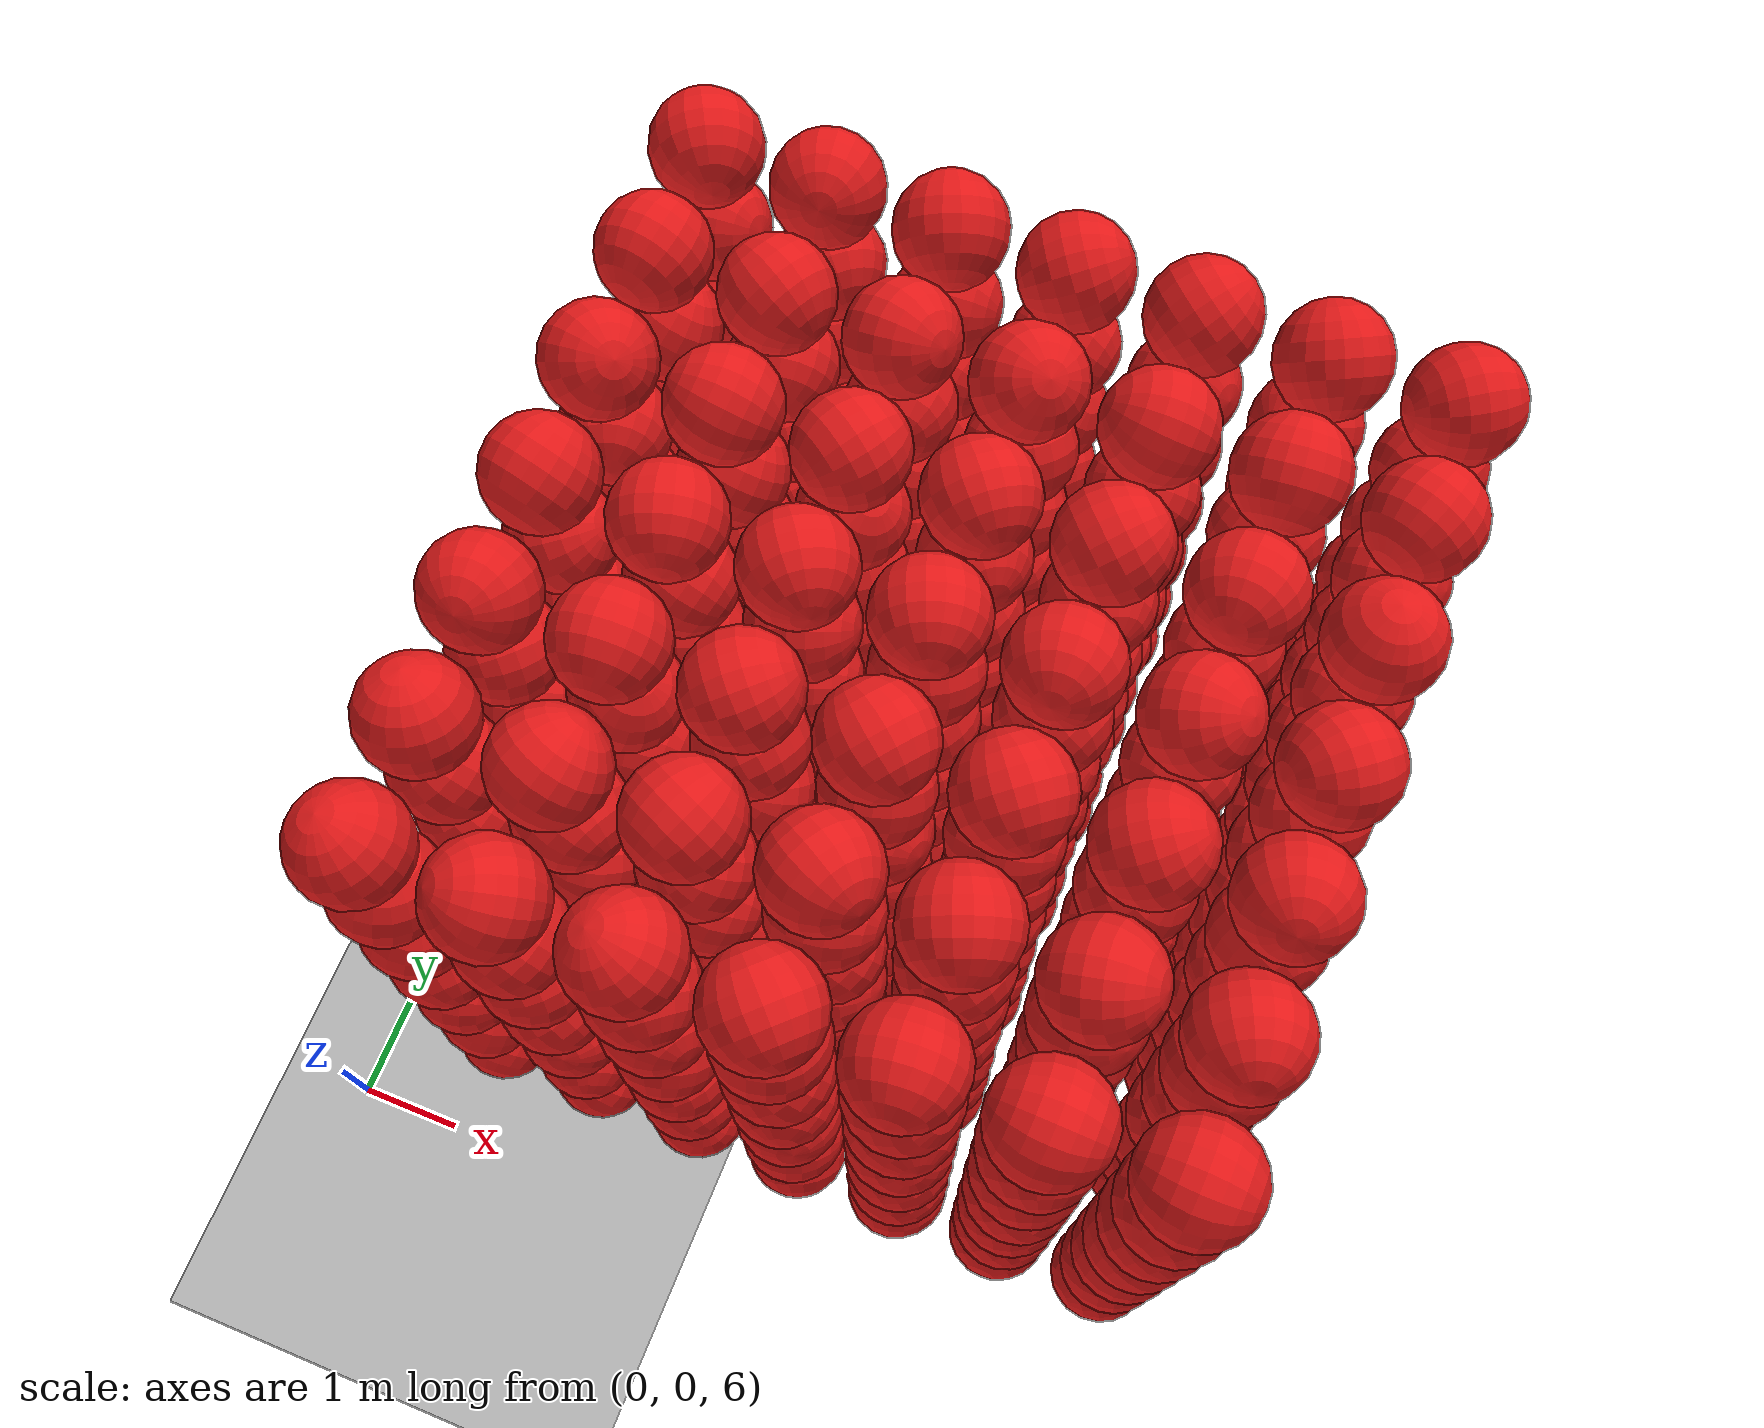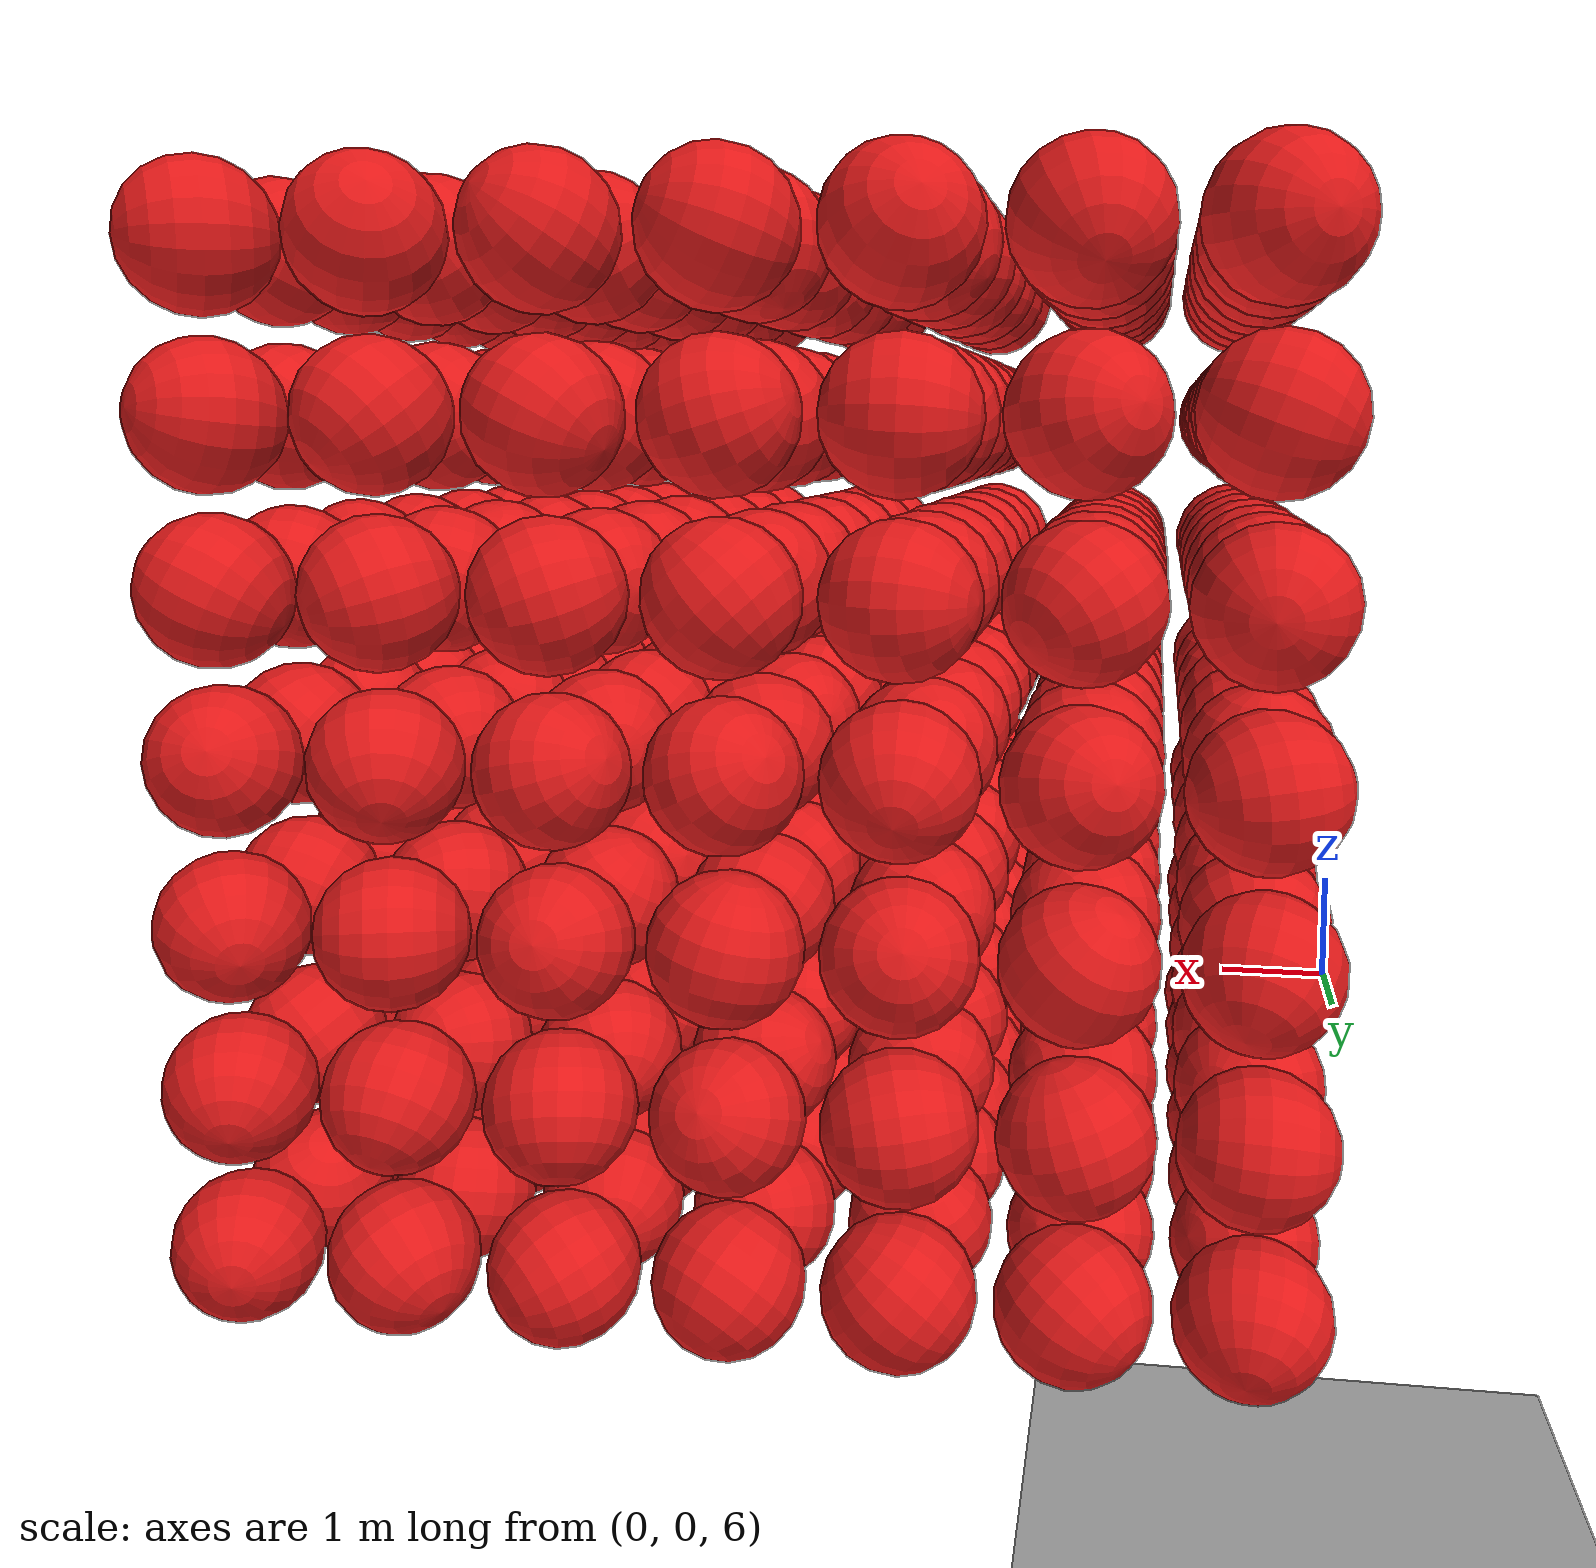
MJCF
<mujoco model="Humanoid and 100 objects">
    <compiler angle="degree"/>

    <option timestep="0.01" iterations="50" solver="PGS" jacobian="sparse" cone="elliptic" tolerance="1e-10"/>

    <size njmax="5000" nconmax="2000" nstack="1000000000"/>

    <default>
        <geom solimp=".9 .9 .01"/>

        <default class="object5">
			<geom type="sphere" material="geom" rgba=".9 .1 .1 1" size="0.500000"/>
        </default>
    </default>

    <asset>
        <texture type="skybox" builtin="gradient" width="128" height="128" rgb1=".4 .6 .8" rgb2="0 0 0"/>
        <texture name="texgeom" type="cube" builtin="flat" mark="cross" width="128" height="128"
            rgb1="0.6 0.6 0.6" rgb2="0.6 0.6 0.6" markrgb="1 1 1"/>
        <texture name="texplane" type="2d" builtin="checker" rgb1=".4 .4 .4" rgb2=".6 .6 .6"
            width="512" height="512"/>
        <material name='geom' texture="texgeom" texuniform="true"/>
        <material name='MatPlane' reflectance='0.3' texture="texplane" texrepeat="1 1" texuniform="true"/>
    </asset>

    <visual>
        <quality shadowsize="4096" offsamples="8"/>
        <map znear="0.1" force="0.05"/>
    </visual>

    <statistic extent="4"/>

    <worldbody>
        <light directional="true" diffuse=".8 .8 .8" pos="0 0 10" dir="0 0 -10"/>

        <geom pos="0 0 0" type="plane" size="3 3 .5" rgba=".7 .7 .7 1" material="MatPlane"/>
		<body pos="1.100843 1.100294 6.100027" quat="-0.660486 0.483778 0.343327 0.460265"> <freejoint/> <geom class="object5"/> </body>
		<body pos="1.100624 1.100825 7.200035" quat="-0.202914 -0.537380 -0.041008 0.817537"> <freejoint/> <geom class="object5"/> </body>
		<body pos="1.100281 1.100599 8.300026" quat="-0.524456 0.507891 -0.464079 0.501620"> <freejoint/> <geom class="object5"/> </body>
		<body pos="1.100338 1.100671 9.400052" quat="0.430952 -0.000953 0.815337 -0.386660"> <freejoint/> <geom class="object5"/> </body>
		<body pos="1.100377 1.100114 10.500965" quat="-0.142552 -0.877502 0.457672 0.014337"> <freejoint/> <geom class="object5"/> </body>
		<body pos="1.100328 1.100754 11.600836" quat="-0.575387 0.080426 -0.151472 -0.799698"> <freejoint/> <geom class="object5"/> </body>
		<body pos="1.100600 1.100937 12.700108" quat="0.744484 0.093930 -0.135211 -0.647023"> <freejoint/> <geom class="object5"/> </body>
		<body pos="1.100248 2.200447 6.100533" quat="-0.267067 0.501828 0.701310 0.430126"> <freejoint/> <geom class="object5"/> </body>
		<body pos="1.100406 2.200604 7.200641" quat="-0.875903 -0.008953 -0.445626 0.184745"> <freejoint/> <geom class="object5"/> </body>
		<body pos="1.100944 2.200427 8.300033" quat="0.645415 0.638724 -0.212957 -0.360723"> <freejoint/> <geom class="object5"/> </body>
		<body pos="1.100787 2.200512 9.400563" quat="0.252574 -0.557109 0.509238 0.605403"> <freejoint/> <geom class="object5"/> </body>
		<body pos="1.100097 2.200846 10.500909" quat="-0.931593 0.045149 0.286622 -0.218962"> <freejoint/> <geom class="object5"/> </body>
		<body pos="1.100649 2.200763 11.600576" quat="0.304705 -0.512301 0.784948 -0.168995"> <freejoint/> <geom class="object5"/> </body>
		<body pos="1.100632 2.200833 12.700270" quat="-0.231435 0.126578 -0.130964 -0.955649"> <freejoint/> <geom class="object5"/> </body>
		<body pos="1.100744 3.300033 6.100430" quat="-0.593056 0.609794 0.028631 0.524992"> <freejoint/> <geom class="object5"/> </body>
		<body pos="1.100383 3.300884 7.200255" quat="0.692481 0.667952 -0.171800 0.211647"> <freejoint/> <geom class="object5"/> </body>
		<body pos="1.100568 3.300895 8.300214" quat="-0.683924 0.524627 -0.365132 -0.351701"> <freejoint/> <geom class="object5"/> </body>
		<body pos="1.100641 3.300305 9.400826" quat="0.573057 0.665185 -0.163102 0.450036"> <freejoint/> <geom class="object5"/> </body>
		<body pos="1.100157 3.300625 10.500699" quat="-0.672416 0.050626 0.630908 -0.383731"> <freejoint/> <geom class="object5"/> </body>
		<body pos="1.100235 3.300840 11.600496" quat="-0.737401 -0.571095 0.335052 0.133526"> <freejoint/> <geom class="object5"/> </body>
		<body pos="1.100292 3.300622 12.700716" quat="-0.558851 -0.223590 -0.351197 0.717185"> <freejoint/> <geom class="object5"/> </body>
		<body pos="1.100135 4.400902 6.100290" quat="-0.000913 0.585742 0.365713 -0.723297"> <freejoint/> <geom class="object5"/> </body>
		<body pos="1.100697 4.400129 7.200946" quat="0.604168 0.023460 0.280512 0.745482"> <freejoint/> <geom class="object5"/> </body>
		<body pos="1.100125 4.400752 8.300827" quat="0.436549 -0.479496 -0.110690 -0.753164"> <freejoint/> <geom class="object5"/> </body>
		<body pos="1.100325 4.400135 9.400451" quat="0.230871 0.932824 -0.256389 0.103933"> <freejoint/> <geom class="object5"/> </body>
		<body pos="1.100926 4.400899 10.500545" quat="0.576425 -0.644036 0.443470 -0.237246"> <freejoint/> <geom class="object5"/> </body>
		<body pos="1.100229 4.400822 11.600348" quat="-0.441382 -0.622585 0.600820 0.237877"> <freejoint/> <geom class="object5"/> </body>
		<body pos="1.100861 4.400939 12.700680" quat="0.558515 -0.325548 0.515959 0.562019"> <freejoint/> <geom class="object5"/> </body>
		<body pos="1.100300 5.500073 6.100767" quat="-0.829781 0.457355 -0.104181 0.302383"> <freejoint/> <geom class="object5"/> </body>
		<body pos="1.100170 5.500531 7.200634" quat="-0.664189 -0.040500 0.528074 -0.527590"> <freejoint/> <geom class="object5"/> </body>
		<body pos="1.100443 5.500660 8.300295" quat="0.784538 0.338445 -0.510740 0.095395"> <freejoint/> <geom class="object5"/> </body>
		<body pos="1.100879 5.500558 9.400752" quat="0.555320 0.480710 -0.519099 -0.437120"> <freejoint/> <geom class="object5"/> </body>
		<body pos="1.100154 5.500029 10.500009" quat="0.192424 0.217556 0.835762 0.465987"> <freejoint/> <geom class="object5"/> </body>
		<body pos="1.100301 5.500496 11.600258" quat="0.389391 -0.640873 0.411443 0.518045"> <freejoint/> <geom class="object5"/> </body>
		<body pos="1.100745 5.500337 12.700584" quat="-0.055412 -0.736622 0.586673 0.331862"> <freejoint/> <geom class="object5"/> </body>
		<body pos="1.100267 6.600969 6.100184" quat="-0.436211 -0.193653 -0.574561 -0.664904"> <freejoint/> <geom class="object5"/> </body>
		<body pos="1.100705 6.600181 7.200522" quat="-0.369394 -0.067450 0.770641 -0.514889"> <freejoint/> <geom class="object5"/> </body>
		<body pos="1.100001 6.600907 8.300680" quat="0.023487 0.034666 -0.623742 0.780508"> <freejoint/> <geom class="object5"/> </body>
		<body pos="1.100359 6.600625 9.400393" quat="-0.886195 0.081512 0.016398 -0.455791"> <freejoint/> <geom class="object5"/> </body>
		<body pos="1.100045 6.600842 10.500048" quat="-0.312852 0.482733 0.804614 0.147270"> <freejoint/> <geom class="object5"/> </body>
		<body pos="1.100778 6.600728 11.600651" quat="0.342376 0.912599 0.072964 -0.211230"> <freejoint/> <geom class="object5"/> </body>
		<body pos="1.100670 6.600441 12.700133" quat="-0.367882 0.288289 -0.634536 -0.615562"> <freejoint/> <geom class="object5"/> </body>
		<body pos="1.100751 7.700522 6.100490" quat="-0.817680 -0.495291 -0.104249 0.274258"> <freejoint/> <geom class="object5"/> </body>
		<body pos="1.100709 7.700993 7.200932" quat="-0.484957 0.539390 -0.401033 0.559507"> <freejoint/> <geom class="object5"/> </body>
		<body pos="1.100597 7.700240 8.300070" quat="-0.343611 0.538798 -0.727386 -0.250075"> <freejoint/> <geom class="object5"/> </body>
		<body pos="1.100132 7.700158 9.400062" quat="0.350409 -0.717885 0.202748 -0.566346"> <freejoint/> <geom class="object5"/> </body>
		<body pos="1.100651 7.700499 10.500285" quat="0.409289 0.394183 0.542528 -0.618681"> <freejoint/> <geom class="object5"/> </body>
		<body pos="1.100640 7.700007 11.600106" quat="-0.765641 -0.258762 -0.507030 -0.299592"> <freejoint/> <geom class="object5"/> </body>
		<body pos="1.100250 7.700387 12.700421" quat="0.267831 0.549809 -0.439777 0.657703"> <freejoint/> <geom class="object5"/> </body>
		<body pos="2.200740 1.100826 6.100182" quat="-0.693651 0.176141 0.321719 -0.619936"> <freejoint/> <geom class="object5"/> </body>
		<body pos="2.200096 1.100598 7.200812" quat="0.452122 -0.590075 0.332402 0.580436"> <freejoint/> <geom class="object5"/> </body>
		<body pos="2.200452 1.100071 8.300241" quat="0.444398 -0.880705 -0.144662 0.077077"> <freejoint/> <geom class="object5"/> </body>
		<body pos="2.200954 1.100209 9.400116" quat="0.212872 -0.570087 0.703890 -0.366368"> <freejoint/> <geom class="object5"/> </body>
		<body pos="2.200606 1.100817 10.500830" quat="-0.017305 0.411633 0.655365 0.633052"> <freejoint/> <geom class="object5"/> </body>
		<body pos="2.200214 1.100547 11.600785" quat="-0.759519 0.613685 -0.060754 0.206954"> <freejoint/> <geom class="object5"/> </body>
		<body pos="2.200261 1.100085 12.700298" quat="0.765195 -0.054082 -0.422896 0.482401"> <freejoint/> <geom class="object5"/> </body>
		<body pos="2.200772 2.200021 6.100880" quat="0.684237 -0.403504 0.387921 -0.467462"> <freejoint/> <geom class="object5"/> </body>
		<body pos="2.200930 2.200282 7.200169" quat="0.446224 -0.041617 0.279282 0.849208"> <freejoint/> <geom class="object5"/> </body>
		<body pos="2.200313 2.200076 8.300791" quat="-0.243897 0.154183 -0.573729 -0.766536"> <freejoint/> <geom class="object5"/> </body>
		<body pos="2.200154 2.200827 9.400301" quat="-0.254704 0.330674 0.696166 0.584066"> <freejoint/> <geom class="object5"/> </body>
		<body pos="2.200374 2.200190 10.500647" quat="-0.875824 -0.383066 0.244543 0.162454"> <freejoint/> <geom class="object5"/> </body>
		<body pos="2.200325 2.200989 11.600123" quat="0.439373 -0.639627 -0.121734 0.618877"> <freejoint/> <geom class="object5"/> </body>
		<body pos="2.200360 2.200076 12.700557" quat="-0.474962 -0.773035 0.419465 -0.029613"> <freejoint/> <geom class="object5"/> </body>
		<body pos="2.200183 3.300101 6.100202" quat="-0.601708 -0.290284 0.742214 0.052931"> <freejoint/> <geom class="object5"/> </body>
		<body pos="2.200248 3.300437 7.200669" quat="0.119140 0.272408 0.907077 -0.298011"> <freejoint/> <geom class="object5"/> </body>
		<body pos="2.200749 3.300157 8.300058" quat="-0.265448 0.525250 -0.202783 0.782642"> <freejoint/> <geom class="object5"/> </body>
		<body pos="2.200605 3.300338 9.400928" quat="0.640541 0.563825 -0.391002 -0.344856"> <freejoint/> <geom class="object5"/> </body>
		<body pos="2.200780 3.300701 10.500493" quat="0.686337 -0.034985 0.726310 -0.013827"> <freejoint/> <geom class="object5"/> </body>
		<body pos="2.200503 3.300769 11.600388" quat="-0.102471 -0.804900 0.566728 0.143020"> <freejoint/> <geom class="object5"/> </body>
		<body pos="2.200649 3.300798 12.700220" quat="0.575923 0.651296 -0.334685 0.363473"> <freejoint/> <geom class="object5"/> </body>
		<body pos="2.200339 4.400273 6.100170" quat="0.375670 0.082115 0.753798 -0.532838"> <freejoint/> <geom class="object5"/> </body>
		<body pos="2.200176 4.400431 7.200476" quat="0.432297 -0.559806 -0.679991 0.193256"> <freejoint/> <geom class="object5"/> </body>
		<body pos="2.200029 4.400136 8.300695" quat="0.036604 0.099413 0.720189 0.685642"> <freejoint/> <geom class="object5"/> </body>
		<body pos="2.200502 4.400277 9.400120" quat="0.505221 0.614592 0.578311 0.180511"> <freejoint/> <geom class="object5"/> </body>
		<body pos="2.200091 4.400075 10.500182" quat="-0.726951 0.349164 -0.552365 0.210996"> <freejoint/> <geom class="object5"/> </body>
		<body pos="2.200790 4.400566 11.600377" quat="0.636425 -0.386145 -0.357464 0.563981"> <freejoint/> <geom class="object5"/> </body>
		<body pos="2.200504 4.400261 12.700732" quat="-0.458053 0.572244 -0.377500 -0.565878"> <freejoint/> <geom class="object5"/> </body>
		<body pos="2.200074 5.500770 6.100818" quat="0.413346 0.443988 0.792898 -0.057723"> <freejoint/> <geom class="object5"/> </body>
		<body pos="2.200787 5.500423 7.200944" quat="-0.699119 0.674701 0.098407 -0.215237"> <freejoint/> <geom class="object5"/> </body>
		<body pos="2.200558 5.500300 8.300159" quat="0.401209 0.447207 0.709911 -0.367509"> <freejoint/> <geom class="object5"/> </body>
		<body pos="2.200250 5.500345 9.400329" quat="0.774774 0.464105 -0.383796 0.192440"> <freejoint/> <geom class="object5"/> </body>
		<body pos="2.200766 5.500846 10.500902" quat="0.149236 -0.672781 -0.439655 0.576019"> <freejoint/> <geom class="object5"/> </body>
		<body pos="2.200414 5.500661 11.600783" quat="-0.407494 0.087968 -0.437073 -0.796980"> <freejoint/> <geom class="object5"/> </body>
		<body pos="2.200767 5.500022 12.700393" quat="-0.420046 -0.502071 0.275458 0.703995"> <freejoint/> <geom class="object5"/> </body>
		<body pos="2.200007 6.600746 6.100800" quat="0.556811 0.647987 -0.519041 0.025901"> <freejoint/> <geom class="object5"/> </body>
		<body pos="2.200822 6.600637 7.200954" quat="0.572909 0.598135 -0.554616 -0.080073"> <freejoint/> <geom class="object5"/> </body>
		<body pos="2.200321 6.600134 8.300135" quat="0.420229 0.034014 0.610201 0.670750"> <freejoint/> <geom class="object5"/> </body>
		<body pos="2.200410 6.600371 9.400227" quat="-0.213766 -0.925975 -0.162015 -0.265756"> <freejoint/> <geom class="object5"/> </body>
		<body pos="2.200260 6.600134 10.500419" quat="0.026259 -0.672414 0.706913 -0.217815"> <freejoint/> <geom class="object5"/> </body>
		<body pos="2.200436 6.600793 11.600816" quat="0.650353 0.746168 0.003270 0.142348"> <freejoint/> <geom class="object5"/> </body>
		<body pos="2.200631 6.600098 12.700246" quat="0.275157 -0.463741 0.634762 -0.553453"> <freejoint/> <geom class="object5"/> </body>
		<body pos="2.200040 7.700297 6.100556" quat="0.846926 0.341469 0.393390 0.106579"> <freejoint/> <geom class="object5"/> </body>
		<body pos="2.200533 7.700876 7.200393" quat="-0.106425 -0.740464 0.652951 0.118503"> <freejoint/> <geom class="object5"/> </body>
		<body pos="2.200357 7.700701 8.300109" quat="-0.924789 0.182379 0.298353 0.149961"> <freejoint/> <geom class="object5"/> </body>
		<body pos="2.200910 7.700636 9.400526" quat="-0.368405 -0.687882 0.355490 -0.514512"> <freejoint/> <geom class="object5"/> </body>
		<body pos="2.200280 7.700259 10.500547" quat="0.074848 0.522548 0.670350 0.521509"> <freejoint/> <geom class="object5"/> </body>
		<body pos="2.200969 7.700180 11.600931" quat="-0.616226 -0.351372 -0.665401 0.232474"> <freejoint/> <geom class="object5"/> </body>
		<body pos="2.200905 7.700572 12.700155" quat="0.006500 0.185954 -0.855819 -0.482651"> <freejoint/> <geom class="object5"/> </body>
		<body pos="3.300716 1.100553 6.100142" quat="-0.233785 -0.202117 0.149963 -0.939151"> <freejoint/> <geom class="object5"/> </body>
		<body pos="3.300578 1.100932 7.200107" quat="0.400858 0.812462 0.188015 0.379301"> <freejoint/> <geom class="object5"/> </body>
		<body pos="3.300303 1.100459 8.300048" quat="-0.271975 -0.328046 -0.503907 0.751327"> <freejoint/> <geom class="object5"/> </body>
		<body pos="3.300451 1.100807 9.400790" quat="-0.323381 -0.643196 -0.663129 0.204901"> <freejoint/> <geom class="object5"/> </body>
		<body pos="3.300424 1.100906 10.500417" quat="-0.594835 0.068777 0.751563 0.276757"> <freejoint/> <geom class="object5"/> </body>
		<body pos="3.300395 1.100259 11.600848" quat="0.628249 -0.173629 -0.610835 -0.449485"> <freejoint/> <geom class="object5"/> </body>
		<body pos="3.300576 1.100186 12.700291" quat="-0.157088 -0.627036 -0.745097 -0.164257"> <freejoint/> <geom class="object5"/> </body>
		<body pos="3.300236 2.200028 6.100658" quat="-0.687680 0.610015 -0.184257 -0.347891"> <freejoint/> <geom class="object5"/> </body>
		<body pos="3.300746 2.200746 7.200174" quat="-0.615866 -0.524896 0.205167 0.550545"> <freejoint/> <geom class="object5"/> </body>
		<body pos="3.300510 2.200166 8.300714" quat="0.596555 -0.412512 0.543682 -0.422334"> <freejoint/> <geom class="object5"/> </body>
		<body pos="3.300837 2.200859 9.400523" quat="-0.038722 0.666911 -0.743955 0.016175"> <freejoint/> <geom class="object5"/> </body>
		<body pos="3.300621 2.200734 10.500230" quat="-0.592022 -0.447006 0.333706 0.581667"> <freejoint/> <geom class="object5"/> </body>
		<body pos="3.300387 2.200993 11.600326" quat="-0.888498 -0.282208 0.153379 0.327728"> <freejoint/> <geom class="object5"/> </body>
		<body pos="3.300542 2.200315 12.700159" quat="-0.636644 -0.665354 0.384502 -0.064392"> <freejoint/> <geom class="object5"/> </body>
		<body pos="3.300113 3.300701 6.100180" quat="0.715534 0.032885 0.114135 -0.688406"> <freejoint/> <geom class="object5"/> </body>
		<body pos="3.300785 3.300526 7.200571" quat="-0.157118 0.445715 -0.860291 0.191183"> <freejoint/> <geom class="object5"/> </body>
		<body pos="3.300862 3.300449 8.300653" quat="-0.452309 0.247274 -0.508859 0.689446"> <freejoint/> <geom class="object5"/> </body>
		<body pos="3.300796 3.300954 9.400444" quat="-0.072987 0.168967 0.579978 -0.793567"> <freejoint/> <geom class="object5"/> </body>
		<body pos="3.300187 3.300944 10.500948" quat="-0.084091 0.555949 0.767085 0.308919"> <freejoint/> <geom class="object5"/> </body>
		<body pos="3.300372 3.300406 11.600439" quat="0.350564 -0.068543 0.889443 -0.285127"> <freejoint/> <geom class="object5"/> </body>
		<body pos="3.300339 3.300896 12.700545" quat="0.401296 -0.603872 -0.075282 -0.684567"> <freejoint/> <geom class="object5"/> </body>
		<body pos="3.300663 4.400704 6.100919" quat="0.369263 0.438545 0.815990 -0.074046"> <freejoint/> <geom class="object5"/> </body>
		<body pos="3.300458 4.400806 7.200825" quat="-0.385535 -0.590732 -0.551948 -0.444692"> <freejoint/> <geom class="object5"/> </body>
		<body pos="3.300171 4.400626 8.300030" quat="-0.055263 0.356417 -0.769412 -0.527180"> <freejoint/> <geom class="object5"/> </body>
		<body pos="3.300289 4.400173 9.400324" quat="0.657753 -0.437685 0.602084 0.115274"> <freejoint/> <geom class="object5"/> </body>
		<body pos="3.300555 4.400731 10.500774" quat="0.581888 -0.525253 0.426895 -0.450862"> <freejoint/> <geom class="object5"/> </body>
		<body pos="3.300029 4.400127 11.600134" quat="-0.490172 0.574007 -0.299057 0.583791"> <freejoint/> <geom class="object5"/> </body>
		<body pos="3.300638 4.400873 12.700367" quat="-0.550763 -0.652823 0.095307 -0.511272"> <freejoint/> <geom class="object5"/> </body>
		<body pos="3.300306 5.500016 6.100587" quat="0.598940 0.452998 -0.637140 0.173542"> <freejoint/> <geom class="object5"/> </body>
		<body pos="3.300359 5.500114 7.200541" quat="-0.158149 0.032354 0.730628 -0.663419"> <freejoint/> <geom class="object5"/> </body>
		<body pos="3.300435 5.500059 8.300381" quat="0.418167 -0.761380 0.314402 -0.382869"> <freejoint/> <geom class="object5"/> </body>
		<body pos="3.300599 5.500152 9.400436" quat="-0.804540 -0.447371 -0.390155 0.018797"> <freejoint/> <geom class="object5"/> </body>
		<body pos="3.300215 5.500346 10.500748" quat="-0.185193 -0.952430 -0.235771 -0.054704"> <freejoint/> <geom class="object5"/> </body>
		<body pos="3.300825 5.500304 11.600822" quat="0.126772 -0.860110 -0.463208 0.171983"> <freejoint/> <geom class="object5"/> </body>
		<body pos="3.300480 5.500199 12.700239" quat="0.543653 0.227614 -0.690488 0.419356"> <freejoint/> <geom class="object5"/> </body>
		<body pos="3.300402 6.600462 6.100707" quat="-0.149818 -0.736452 -0.645073 0.138108"> <freejoint/> <geom class="object5"/> </body>
		<body pos="3.300446 6.600927 7.200095" quat="-0.216207 0.079830 -0.673921 0.701934"> <freejoint/> <geom class="object5"/> </body>
		<body pos="3.300633 6.600905 8.300631" quat="-0.734788 -0.277599 -0.587092 0.195828"> <freejoint/> <geom class="object5"/> </body>
		<body pos="3.300061 6.600674 9.400477" quat="-0.459237 0.038573 0.488933 0.740647"> <freejoint/> <geom class="object5"/> </body>
		<body pos="3.300316 6.600311 10.500345" quat="0.274215 0.595361 0.431640 0.619708"> <freejoint/> <geom class="object5"/> </body>
		<body pos="3.300871 6.600173 11.600850" quat="0.587480 0.345399 0.479372 -0.552964"> <freejoint/> <geom class="object5"/> </body>
		<body pos="3.300647 6.600324 12.700640" quat="0.649842 -0.216235 0.456450 -0.567980"> <freejoint/> <geom class="object5"/> </body>
		<body pos="3.300520 7.700627 6.100714" quat="-0.366127 -0.446894 0.786709 0.217543"> <freejoint/> <geom class="object5"/> </body>
		<body pos="3.300093 7.700628 7.200192" quat="0.455211 0.599083 -0.273521 -0.599223"> <freejoint/> <geom class="object5"/> </body>
		<body pos="3.300765 7.700319 8.300252" quat="-0.559213 -0.803585 0.096788 -0.179344"> <freejoint/> <geom class="object5"/> </body>
		<body pos="3.300750 7.700487 9.400385" quat="-0.822648 -0.537017 0.082292 -0.167600"> <freejoint/> <geom class="object5"/> </body>
		<body pos="3.300901 7.700056 10.500444" quat="0.073491 -0.711226 0.079583 0.694567"> <freejoint/> <geom class="object5"/> </body>
		<body pos="3.300198 7.700156 11.600061" quat="0.222127 -0.663864 -0.288076 0.653419"> <freejoint/> <geom class="object5"/> </body>
		<body pos="3.300765 7.700244 12.700682" quat="-0.548895 0.196752 0.541119 0.605965"> <freejoint/> <geom class="object5"/> </body>
		<body pos="4.400348 1.100486 6.100680" quat="0.615727 -0.117992 -0.409418 -0.662823"> <freejoint/> <geom class="object5"/> </body>
		<body pos="4.400076 1.100445 7.200166" quat="-0.169037 0.702160 0.018923 0.691404"> <freejoint/> <geom class="object5"/> </body>
		<body pos="4.400092 1.100993 8.300096" quat="-0.522267 0.797645 0.286216 -0.095289"> <freejoint/> <geom class="object5"/> </body>
		<body pos="4.400298 1.100133 9.400295" quat="-0.522495 -0.286653 -0.611498 0.520481"> <freejoint/> <geom class="object5"/> </body>
		<body pos="4.400972 1.100218 10.500706" quat="-0.673206 0.169833 0.247333 -0.675853"> <freejoint/> <geom class="object5"/> </body>
		<body pos="4.400003 1.100142 11.600862" quat="-0.944481 0.133648 0.093710 0.285153"> <freejoint/> <geom class="object5"/> </body>
		<body pos="4.400333 1.100413 12.700414" quat="0.667656 -0.610177 -0.142737 0.401928"> <freejoint/> <geom class="object5"/> </body>
		<body pos="4.400594 2.200310 6.100902" quat="-0.666360 -0.296390 0.633750 0.257835"> <freejoint/> <geom class="object5"/> </body>
		<body pos="4.400685 2.200474 7.200141" quat="0.660668 0.560600 -0.091661 0.490758"> <freejoint/> <geom class="object5"/> </body>
		<body pos="4.400325 2.200368 8.300795" quat="-0.495076 0.558201 -0.615957 -0.252800"> <freejoint/> <geom class="object5"/> </body>
		<body pos="4.400048 2.200443 9.400790" quat="0.798050 0.064177 0.586834 0.120928"> <freejoint/> <geom class="object5"/> </body>
		<body pos="4.400751 2.200009 10.500477" quat="-0.393748 -0.302926 0.736411 -0.459236"> <freejoint/> <geom class="object5"/> </body>
		<body pos="4.400520 2.200226 11.600567" quat="0.582303 -0.430313 0.531472 -0.439650"> <freejoint/> <geom class="object5"/> </body>
		<body pos="4.400186 2.200647 12.700128" quat="-0.515594 0.196085 -0.581998 0.597488"> <freejoint/> <geom class="object5"/> </body>
		<body pos="4.400539 3.300374 6.100707" quat="0.874645 -0.230136 0.377117 0.199539"> <freejoint/> <geom class="object5"/> </body>
		<body pos="4.400775 3.300592 7.200376" quat="0.480183 -0.375582 0.406658 0.680435"> <freejoint/> <geom class="object5"/> </body>
		<body pos="4.400281 3.300710 8.300665" quat="-0.132306 -0.002688 0.697728 0.704034"> <freejoint/> <geom class="object5"/> </body>
		<body pos="4.400733 3.300385 9.400040" quat="0.197354 0.153995 -0.344617 0.904752"> <freejoint/> <geom class="object5"/> </body>
		<body pos="4.400625 3.300624 10.500296" quat="-0.754744 -0.366075 -0.470713 -0.273460"> <freejoint/> <geom class="object5"/> </body>
		<body pos="4.400848 3.300160 11.600158" quat="0.022839 0.272462 -0.893085 0.357269"> <freejoint/> <geom class="object5"/> </body>
		<body pos="4.400844 3.300782 12.700265" quat="-0.452761 -0.774074 -0.128343 -0.423490"> <freejoint/> <geom class="object5"/> </body>
		<body pos="4.400280 4.400932 6.100400" quat="-0.221538 0.170589 -0.792792 -0.541573"> <freejoint/> <geom class="object5"/> </body>
		<body pos="4.400724 4.400575 7.200200" quat="0.965424 -0.214373 0.125782 0.078608"> <freejoint/> <geom class="object5"/> </body>
		<body pos="4.400185 4.400082 8.300464" quat="-0.944165 -0.130762 0.116380 0.279123"> <freejoint/> <geom class="object5"/> </body>
		<body pos="4.400034 4.400710 9.400169" quat="0.172969 0.200164 0.504481 -0.821897"> <freejoint/> <geom class="object5"/> </body>
		<body pos="4.400855 4.400384 10.500400" quat="-0.571484 0.181316 -0.669679 -0.438247"> <freejoint/> <geom class="object5"/> </body>
		<body pos="4.400349 4.400630 11.600664" quat="0.659797 0.595795 -0.200652 -0.411625"> <freejoint/> <geom class="object5"/> </body>
		<body pos="4.400920 4.400289 12.700551" quat="0.656537 -0.641862 -0.379376 -0.114221"> <freejoint/> <geom class="object5"/> </body>
		<body pos="4.400578 5.500900 6.100218" quat="0.846720 -0.119691 0.516378 0.045748"> <freejoint/> <geom class="object5"/> </body>
		<body pos="4.400331 5.500432 7.200718" quat="0.535874 0.502161 -0.470316 -0.489363"> <freejoint/> <geom class="object5"/> </body>
		<body pos="4.400893 5.500653 8.300040" quat="0.010244 0.856868 -0.248231 -0.451724"> <freejoint/> <geom class="object5"/> </body>
		<body pos="4.400234 5.500201 9.400380" quat="0.229641 -0.561114 0.296632 0.737852"> <freejoint/> <geom class="object5"/> </body>
		<body pos="4.400104 5.500729 10.500649" quat="-0.042199 0.720785 -0.671908 0.165010"> <freejoint/> <geom class="object5"/> </body>
		<body pos="4.400234 5.500032 11.600580" quat="0.602194 0.100126 0.598120 -0.519220"> <freejoint/> <geom class="object5"/> </body>
		<body pos="4.400621 5.500174 12.700290" quat="-0.655944 0.274499 0.615885 0.339226"> <freejoint/> <geom class="object5"/> </body>
		<body pos="4.400757 6.600542 6.100282" quat="-0.404519 -0.338807 0.734332 -0.427001"> <freejoint/> <geom class="object5"/> </body>
		<body pos="4.400537 6.600205 7.200434" quat="-0.625180 -0.217398 0.512952 0.546597"> <freejoint/> <geom class="object5"/> </body>
		<body pos="4.400904 6.600540 8.300818" quat="0.311188 -0.682036 -0.528639 -0.398157"> <freejoint/> <geom class="object5"/> </body>
		<body pos="4.400247 6.600170 9.400235" quat="-0.397583 0.799643 -0.271494 -0.358874"> <freejoint/> <geom class="object5"/> </body>
		<body pos="4.400404 6.600302 10.500757" quat="-0.317635 -0.849482 0.265381 -0.327202"> <freejoint/> <geom class="object5"/> </body>
		<body pos="4.400363 6.600068 11.600867" quat="-0.067265 -0.674802 0.646902 -0.348763"> <freejoint/> <geom class="object5"/> </body>
		<body pos="4.400614 6.600662 12.700200" quat="0.749466 0.269011 0.067291 0.601170"> <freejoint/> <geom class="object5"/> </body>
		<body pos="4.400557 7.700021 6.100483" quat="0.488879 0.374628 0.114772 -0.779409"> <freejoint/> <geom class="object5"/> </body>
		<body pos="4.400718 7.700449 7.200660" quat="0.374570 0.450799 -0.696518 0.413932"> <freejoint/> <geom class="object5"/> </body>
		<body pos="4.400567 7.700076 8.300252" quat="-0.641956 0.112918 0.071773 -0.754977"> <freejoint/> <geom class="object5"/> </body>
		<body pos="4.400988 7.700251 9.400315" quat="-0.358164 -0.822828 0.050131 -0.438360"> <freejoint/> <geom class="object5"/> </body>
		<body pos="4.400409 7.700948 10.500919" quat="-0.808056 0.196159 -0.299425 0.467880"> <freejoint/> <geom class="object5"/> </body>
		<body pos="4.400524 7.700261 11.600493" quat="0.573508 0.361680 -0.484950 -0.552359"> <freejoint/> <geom class="object5"/> </body>
		<body pos="4.400370 7.700862 12.700685" quat="0.196770 -0.525916 -0.616855 0.551529"> <freejoint/> <geom class="object5"/> </body>
		<body pos="5.500420 1.100488 6.100460" quat="0.029423 -0.427913 -0.503762 0.749832"> <freejoint/> <geom class="object5"/> </body>
		<body pos="5.500909 1.100604 7.200365" quat="0.163394 0.279234 0.653911 -0.683909"> <freejoint/> <geom class="object5"/> </body>
		<body pos="5.500539 1.100428 8.300617" quat="0.085413 -0.397714 -0.573732 -0.710886"> <freejoint/> <geom class="object5"/> </body>
		<body pos="5.500059 1.100323 9.400779" quat="-0.297314 0.216078 0.890716 0.267468"> <freejoint/> <geom class="object5"/> </body>
		<body pos="5.500540 1.100232 10.500740" quat="0.694026 0.641955 0.173172 0.276103"> <freejoint/> <geom class="object5"/> </body>
		<body pos="5.500915 1.100433 11.600290" quat="0.249742 -0.387405 0.231083 -0.856824"> <freejoint/> <geom class="object5"/> </body>
		<body pos="5.500995 1.100207 12.700607" quat="-0.219688 0.313936 -0.680544 -0.624532"> <freejoint/> <geom class="object5"/> </body>
		<body pos="5.500927 2.200088 6.100332" quat="0.068612 -0.663972 0.112426 0.736067"> <freejoint/> <geom class="object5"/> </body>
		<body pos="5.500522 2.200932 7.200147" quat="-0.157388 -0.415446 0.185499 -0.876484"> <freejoint/> <geom class="object5"/> </body>
		<body pos="5.500064 2.200323 8.300098" quat="-0.534506 -0.208706 -0.745556 0.338957"> <freejoint/> <geom class="object5"/> </body>
		<body pos="5.500641 2.200174 9.400062" quat="-0.192528 -0.076188 -0.613275 0.762248"> <freejoint/> <geom class="object5"/> </body>
		<body pos="5.500598 2.200023 10.500899" quat="-0.060695 -0.570108 -0.507878 0.642925"> <freejoint/> <geom class="object5"/> </body>
		<body pos="5.500866 2.200615 11.600027" quat="-0.398211 -0.081276 -0.899696 0.159278"> <freejoint/> <geom class="object5"/> </body>
		<body pos="5.500326 2.200450 12.700578" quat="-0.658549 -0.685658 -0.308310 0.033645"> <freejoint/> <geom class="object5"/> </body>
		<body pos="5.500562 3.300242 6.100913" quat="0.552419 -0.094046 0.817539 0.132735"> <freejoint/> <geom class="object5"/> </body>
		<body pos="5.500234 3.300811 7.200451" quat="-0.396427 0.722103 -0.566583 0.019919"> <freejoint/> <geom class="object5"/> </body>
		<body pos="5.500972 3.300648 8.300615" quat="-0.069359 0.177754 0.939986 -0.282877"> <freejoint/> <geom class="object5"/> </body>
		<body pos="5.500229 3.300424 9.400274" quat="-0.302164 0.695067 0.188825 -0.624439"> <freejoint/> <geom class="object5"/> </body>
		<body pos="5.500873 3.300300 10.500400" quat="0.027679 -0.684291 -0.419519 -0.595804"> <freejoint/> <geom class="object5"/> </body>
		<body pos="5.500099 3.300890 11.600033" quat="0.659467 0.014135 -0.751371 -0.018584"> <freejoint/> <geom class="object5"/> </body>
		<body pos="5.500599 3.300090 12.700978" quat="0.331170 -0.084119 0.787260 -0.513295"> <freejoint/> <geom class="object5"/> </body>
		<body pos="5.500824 4.400329 6.100941" quat="-0.484701 0.865841 0.020504 0.122325"> <freejoint/> <geom class="object5"/> </body>
		<body pos="5.500994 4.400771 7.200314" quat="-0.619704 -0.639045 0.438635 -0.123242"> <freejoint/> <geom class="object5"/> </body>
		<body pos="5.500384 4.400523 8.300892" quat="-0.204891 0.227344 -0.882460 -0.357209"> <freejoint/> <geom class="object5"/> </body>
		<body pos="5.500145 4.400245 9.400379" quat="-0.467520 -0.578904 0.272213 0.610078"> <freejoint/> <geom class="object5"/> </body>
		<body pos="5.500209 4.400896 10.500746" quat="0.065766 0.849443 0.117274 -0.510264"> <freejoint/> <geom class="object5"/> </body>
		<body pos="5.500858 4.400862 11.600313" quat="-0.293970 0.577714 -0.012687 -0.761359"> <freejoint/> <geom class="object5"/> </body>
		<body pos="5.500778 4.400427 12.700280" quat="-0.283400 -0.226493 0.501791 -0.785233"> <freejoint/> <geom class="object5"/> </body>
		<body pos="5.500727 5.500873 6.100286" quat="0.290323 -0.496269 0.225733 -0.786432"> <freejoint/> <geom class="object5"/> </body>
		<body pos="5.500967 5.500610 7.200384" quat="-0.677612 0.516138 0.149462 0.502100"> <freejoint/> <geom class="object5"/> </body>
		<body pos="5.500505 5.500008 8.300919" quat="-0.167835 0.436745 -0.655767 0.592499"> <freejoint/> <geom class="object5"/> </body>
		<body pos="5.500910 5.500778 9.400757" quat="-0.383163 0.816024 0.264574 0.342479"> <freejoint/> <geom class="object5"/> </body>
		<body pos="5.500345 5.500704 10.500161" quat="-0.983154 0.122283 0.091680 0.100247"> <freejoint/> <geom class="object5"/> </body>
		<body pos="5.500695 5.500927 11.600944" quat="0.569252 0.146958 0.601643 -0.540723"> <freejoint/> <geom class="object5"/> </body>
		<body pos="5.500341 5.500037 12.700538" quat="0.416252 -0.559340 -0.129411 -0.705071"> <freejoint/> <geom class="object5"/> </body>
		<body pos="5.500303 6.600780 6.100537" quat="0.405980 0.209641 0.593190 -0.662839"> <freejoint/> <geom class="object5"/> </body>
		<body pos="5.500176 6.600416 7.200740" quat="0.546852 -0.659842 -0.504382 -0.105643"> <freejoint/> <geom class="object5"/> </body>
		<body pos="5.500765 6.600524 8.300754" quat="-0.524627 0.274430 0.188517 -0.783528"> <freejoint/> <geom class="object5"/> </body>
		<body pos="5.500740 6.600992 9.400128" quat="-0.271028 -0.600556 0.416790 -0.626229"> <freejoint/> <geom class="object5"/> </body>
		<body pos="5.500987 6.600017 10.500040" quat="0.564126 0.666934 0.122810 0.471039"> <freejoint/> <geom class="object5"/> </body>
		<body pos="5.500520 6.600586 11.600191" quat="0.005273 -0.688137 -0.680198 -0.252528"> <freejoint/> <geom class="object5"/> </body>
		<body pos="5.500631 6.600892 12.700673" quat="0.426909 0.451053 0.690898 0.370081"> <freejoint/> <geom class="object5"/> </body>
		<body pos="5.500520 7.700332 6.100934" quat="-0.593314 0.026226 0.562410 -0.575313"> <freejoint/> <geom class="object5"/> </body>
		<body pos="5.500846 7.700538 7.200910" quat="-0.235340 0.686226 0.674238 0.138247"> <freejoint/> <geom class="object5"/> </body>
		<body pos="5.500102 7.700367 8.300276" quat="-0.320496 -0.374700 -0.683297 0.538504"> <freejoint/> <geom class="object5"/> </body>
		<body pos="5.500453 7.700578 9.400316" quat="0.581537 0.569619 0.546847 0.195721"> <freejoint/> <geom class="object5"/> </body>
		<body pos="5.500726 7.700334 10.500523" quat="-0.382088 0.368152 0.468693 -0.706258"> <freejoint/> <geom class="object5"/> </body>
		<body pos="5.500222 7.700204 11.600624" quat="0.324141 0.481255 -0.692461 -0.428747"> <freejoint/> <geom class="object5"/> </body>
		<body pos="5.500469 7.700378 12.700340" quat="-0.798462 0.478430 -0.178198 0.319074"> <freejoint/> <geom class="object5"/> </body>
		<body pos="6.600551 1.100051 6.100307" quat="0.708534 0.656823 -0.185677 0.179126"> <freejoint/> <geom class="object5"/> </body>
		<body pos="6.600563 1.100831 7.200958" quat="-0.648800 0.593059 0.095445 -0.467150"> <freejoint/> <geom class="object5"/> </body>
		<body pos="6.600221 1.100706 8.300597" quat="0.137520 0.746586 0.130265 -0.637753"> <freejoint/> <geom class="object5"/> </body>
		<body pos="6.600167 1.100102 9.400146" quat="0.405600 0.330630 -0.301578 -0.797009"> <freejoint/> <geom class="object5"/> </body>
		<body pos="6.600390 1.100800 10.500400" quat="0.486545 -0.390560 0.267009 0.734468"> <freejoint/> <geom class="object5"/> </body>
		<body pos="6.600210 1.100480 11.600113" quat="-0.510620 -0.605579 -0.584335 0.176333"> <freejoint/> <geom class="object5"/> </body>
		<body pos="6.600411 1.100639 12.700857" quat="0.350594 0.633364 0.374487 0.579391"> <freejoint/> <geom class="object5"/> </body>
		<body pos="6.600739 2.200254 6.100719" quat="0.426100 0.601827 0.544353 -0.399905"> <freejoint/> <geom class="object5"/> </body>
		<body pos="6.600510 2.200773 7.200573" quat="0.615734 -0.445574 0.552491 0.342183"> <freejoint/> <geom class="object5"/> </body>
		<body pos="6.600286 2.200627 8.300463" quat="-0.614586 0.081906 0.778695 -0.095962"> <freejoint/> <geom class="object5"/> </body>
		<body pos="6.600591 2.200111 9.400200" quat="-0.501002 -0.688429 -0.337843 -0.401155"> <freejoint/> <geom class="object5"/> </body>
		<body pos="6.600359 2.200134 10.500999" quat="0.044188 -0.366533 -0.817515 -0.442007"> <freejoint/> <geom class="object5"/> </body>
		<body pos="6.600399 2.200926 11.600495" quat="0.186755 -0.846985 0.150053 0.474577"> <freejoint/> <geom class="object5"/> </body>
		<body pos="6.600657 2.200528 12.700826" quat="0.747274 -0.300994 0.480077 -0.347147"> <freejoint/> <geom class="object5"/> </body>
		<body pos="6.600015 3.300094 6.100329" quat="-0.312407 -0.774420 -0.542749 -0.089995"> <freejoint/> <geom class="object5"/> </body>
		<body pos="6.600767 3.300681 7.200715" quat="-0.051767 0.539651 0.629331 0.556812"> <freejoint/> <geom class="object5"/> </body>
		<body pos="6.600462 3.300905 8.300386" quat="0.242701 0.142108 0.814779 -0.506987"> <freejoint/> <geom class="object5"/> </body>
		<body pos="6.600663 3.300602 9.400656" quat="-0.335394 -0.297084 -0.550212 -0.704641"> <freejoint/> <geom class="object5"/> </body>
		<body pos="6.600287 3.300355 10.500536" quat="0.598938 -0.575740 0.255681 0.494392"> <freejoint/> <geom class="object5"/> </body>
		<body pos="6.600866 3.300119 11.600955" quat="-0.108106 0.687349 0.667578 -0.264962"> <freejoint/> <geom class="object5"/> </body>
		<body pos="6.600631 3.300865 12.700021" quat="-0.578878 -0.168645 -0.479877 -0.637320"> <freejoint/> <geom class="object5"/> </body>
		<body pos="6.600782 4.400327 6.100817" quat="-0.555872 0.299953 0.639700 0.437971"> <freejoint/> <geom class="object5"/> </body>
		<body pos="6.600230 4.400359 7.200363" quat="-0.461891 -0.323140 -0.820354 -0.096209"> <freejoint/> <geom class="object5"/> </body>
		<body pos="6.600455 4.400029 8.300637" quat="-0.754865 -0.566831 0.316448 0.093501"> <freejoint/> <geom class="object5"/> </body>
		<body pos="6.600006 4.400288 9.400377" quat="-0.620735 -0.747091 -0.068933 -0.227579"> <freejoint/> <geom class="object5"/> </body>
		<body pos="6.600825 4.400538 10.500818" quat="-0.051398 -0.630445 -0.642187 -0.433005"> <freejoint/> <geom class="object5"/> </body>
		<body pos="6.600366 4.400718 11.600159" quat="-0.577127 0.378106 -0.555128 -0.464535"> <freejoint/> <geom class="object5"/> </body>
		<body pos="6.600155 4.400388 12.700896" quat="0.769608 -0.211148 0.348234 -0.491785"> <freejoint/> <geom class="object5"/> </body>
		<body pos="6.600950 5.500625 6.100207" quat="-0.623830 0.105238 -0.360649 -0.685342"> <freejoint/> <geom class="object5"/> </body>
		<body pos="6.600158 5.500050 7.200681" quat="0.453622 0.494853 -0.378260 0.637391"> <freejoint/> <geom class="object5"/> </body>
		<body pos="6.600608 5.500014 8.300344" quat="0.098386 0.373389 -0.155662 0.909214"> <freejoint/> <geom class="object5"/> </body>
		<body pos="6.600145 5.500975 9.400834" quat="-0.322170 0.234203 -0.395399 -0.827657"> <freejoint/> <geom class="object5"/> </body>
		<body pos="6.600522 5.500825 10.500764" quat="0.743533 -0.276480 -0.183146 -0.580668"> <freejoint/> <geom class="object5"/> </body>
		<body pos="6.600334 5.500554 11.600550" quat="-0.549396 -0.619501 -0.164133 0.536136"> <freejoint/> <geom class="object5"/> </body>
		<body pos="6.600185 5.500501 12.700126" quat="0.776702 0.567987 0.137081 -0.235230"> <freejoint/> <geom class="object5"/> </body>
		<body pos="6.600490 6.600887 6.100905" quat="-0.003852 0.069888 0.979682 0.187946"> <freejoint/> <geom class="object5"/> </body>
		<body pos="6.600776 6.600661 7.200470" quat="-0.529355 0.193791 -0.596431 -0.571400"> <freejoint/> <geom class="object5"/> </body>
		<body pos="6.600862 6.600126 8.300646" quat="-0.187544 0.336915 0.710548 -0.588589"> <freejoint/> <geom class="object5"/> </body>
		<body pos="6.600043 6.600836 9.400369" quat="0.232496 0.570247 -0.325532 0.717491"> <freejoint/> <geom class="object5"/> </body>
		<body pos="6.600834 6.600791 10.500657" quat="0.122227 -0.317144 0.901827 0.266812"> <freejoint/> <geom class="object5"/> </body>
		<body pos="6.600782 6.600988 11.600788" quat="0.653042 -0.026622 0.691595 -0.307448"> <freejoint/> <geom class="object5"/> </body>
		<body pos="6.600205 6.600494 12.700031" quat="0.618239 -0.444923 0.334999 0.554617"> <freejoint/> <geom class="object5"/> </body>
		<body pos="6.600682 7.700651 6.100237" quat="-0.038605 0.745592 -0.442306 -0.496959"> <freejoint/> <geom class="object5"/> </body>
		<body pos="6.600272 7.700776 7.200331" quat="0.183022 -0.561071 -0.732518 -0.339294"> <freejoint/> <geom class="object5"/> </body>
		<body pos="6.600231 7.700909 8.300937" quat="-0.704400 0.140914 -0.686436 -0.113002"> <freejoint/> <geom class="object5"/> </body>
		<body pos="6.600522 7.700840 9.400625" quat="-0.447623 0.740002 0.488775 0.114588"> <freejoint/> <geom class="object5"/> </body>
		<body pos="6.600897 7.700368 10.500338" quat="0.217721 -0.756732 -0.228066 -0.572661"> <freejoint/> <geom class="object5"/> </body>
		<body pos="6.600811 7.700723 11.600675" quat="0.578856 0.448789 0.068130 -0.677402"> <freejoint/> <geom class="object5"/> </body>
		<body pos="6.600095 7.700515 12.700952" quat="0.463725 0.588018 0.639925 -0.172309"> <freejoint/> <geom class="object5"/> </body>
		<body pos="7.700321 1.100783 6.100212" quat="0.693775 0.650078 -0.202882 -0.234336"> <freejoint/> <geom class="object5"/> </body>
		<body pos="7.700693 1.100717 7.200800" quat="0.151288 -0.650607 0.096114 -0.737960"> <freejoint/> <geom class="object5"/> </body>
		<body pos="7.700758 1.100660 8.300599" quat="-0.618433 0.484123 0.508561 -0.352890"> <freejoint/> <geom class="object5"/> </body>
		<body pos="7.700033 1.100844 9.400770" quat="0.024394 0.523359 0.736307 -0.428196"> <freejoint/> <geom class="object5"/> </body>
		<body pos="7.700914 1.100577 10.500288" quat="-0.395765 0.662358 -0.227304 -0.594126"> <freejoint/> <geom class="object5"/> </body>
		<body pos="7.700946 1.100651 11.600982" quat="-0.667969 0.717224 -0.013522 0.198053"> <freejoint/> <geom class="object5"/> </body>
		<body pos="7.700045 1.100564 12.700634" quat="-0.003028 -0.701756 0.024163 -0.712001"> <freejoint/> <geom class="object5"/> </body>
		<body pos="7.700844 2.200595 6.100691" quat="0.249836 0.209471 0.770175 -0.548210"> <freejoint/> <geom class="object5"/> </body>
		<body pos="7.700475 2.200842 7.200497" quat="0.425788 -0.519443 0.310933 0.672461"> <freejoint/> <geom class="object5"/> </body>
		<body pos="7.700163 2.200428 8.300042" quat="-0.532931 0.322864 0.721599 -0.301725"> <freejoint/> <geom class="object5"/> </body>
		<body pos="7.700027 2.200905 9.400471" quat="0.600355 -0.251601 0.279513 -0.705793"> <freejoint/> <geom class="object5"/> </body>
		<body pos="7.700512 2.200332 10.500336" quat="0.809674 0.447402 -0.296611 0.237239"> <freejoint/> <geom class="object5"/> </body>
		<body pos="7.700416 2.200576 11.600960" quat="0.211124 -0.636794 0.616471 0.412169"> <freejoint/> <geom class="object5"/> </body>
		<body pos="7.700109 2.200161 12.700297" quat="-0.188251 0.069997 -0.554036 0.807902"> <freejoint/> <geom class="object5"/> </body>
		<body pos="7.700793 3.300274 6.100616" quat="-0.813898 0.347178 -0.311717 0.346223"> <freejoint/> <geom class="object5"/> </body>
		<body pos="7.700295 3.300680 7.200394" quat="-0.216390 -0.586145 0.449095 0.638689"> <freejoint/> <geom class="object5"/> </body>
		<body pos="7.700926 3.300514 8.300193" quat="0.212551 -0.623436 -0.185092 0.729308"> <freejoint/> <geom class="object5"/> </body>
		<body pos="7.700429 3.300926 9.400373" quat="0.428408 0.191519 -0.862524 -0.189313"> <freejoint/> <geom class="object5"/> </body>
		<body pos="7.700925 3.300056 10.500384" quat="-0.443734 -0.465687 -0.244450 0.725589"> <freejoint/> <geom class="object5"/> </body>
		<body pos="7.700502 3.300803 11.600350" quat="-0.057049 0.622850 -0.506757 -0.593297"> <freejoint/> <geom class="object5"/> </body>
		<body pos="7.700706 3.300932 12.700109" quat="0.337785 -0.788117 0.431899 0.279705"> <freejoint/> <geom class="object5"/> </body>
		<body pos="7.700044 4.400798 6.100986" quat="-0.114127 -0.280110 -0.814061 -0.495800"> <freejoint/> <geom class="object5"/> </body>
		<body pos="7.700581 4.400601 7.200253" quat="0.203114 -0.578915 0.579707 -0.536230"> <freejoint/> <geom class="object5"/> </body>
		<body pos="7.700334 4.400651 8.300504" quat="0.084112 -0.328764 0.731386 -0.591535"> <freejoint/> <geom class="object5"/> </body>
		<body pos="7.700649 4.400922 9.400331" quat="0.472799 0.433876 -0.566680 -0.516804"> <freejoint/> <geom class="object5"/> </body>
		<body pos="7.700415 4.400687 10.500658" quat="0.259594 -0.707645 -0.535682 0.380650"> <freejoint/> <geom class="object5"/> </body>
		<body pos="7.700842 4.400747 11.600945" quat="0.724359 -0.477929 0.016857 0.496593"> <freejoint/> <geom class="object5"/> </body>
		<body pos="7.700522 4.400617 12.700558" quat="0.410288 -0.775486 -0.012813 -0.479709"> <freejoint/> <geom class="object5"/> </body>
		<body pos="7.700337 5.500552 6.100744" quat="-0.184170 0.016000 -0.779208 -0.598883"> <freejoint/> <geom class="object5"/> </body>
		<body pos="7.700293 5.500450 7.200240" quat="-0.370065 0.612119 0.134653 0.685733"> <freejoint/> <geom class="object5"/> </body>
		<body pos="7.700618 5.500251 8.300103" quat="0.140161 -0.173386 0.578934 0.784301"> <freejoint/> <geom class="object5"/> </body>
		<body pos="7.700399 5.500567 9.400206" quat="0.783673 0.022628 -0.395351 -0.478584"> <freejoint/> <geom class="object5"/> </body>
		<body pos="7.700953 5.500689 10.500708" quat="0.475449 0.845227 0.243810 0.009787"> <freejoint/> <geom class="object5"/> </body>
		<body pos="7.700879 5.500393 11.600243" quat="-0.355536 0.659012 0.329978 0.574814"> <freejoint/> <geom class="object5"/> </body>
		<body pos="7.700379 5.500633 12.700032" quat="0.842325 -0.060669 0.039913 0.534056"> <freejoint/> <geom class="object5"/> </body>
		<body pos="7.700336 6.600626 6.100327" quat="-0.403534 0.312068 -0.141655 -0.848356"> <freejoint/> <geom class="object5"/> </body>
		<body pos="7.700236 6.600972 7.200699" quat="0.295479 -0.322261 -0.889823 0.130594"> <freejoint/> <geom class="object5"/> </body>
		<body pos="7.700036 6.600265 8.300191" quat="-0.143145 0.758508 0.361209 -0.523166"> <freejoint/> <geom class="object5"/> </body>
		<body pos="7.700292 6.600078 9.400172" quat="0.351181 -0.651562 0.663086 -0.111606"> <freejoint/> <geom class="object5"/> </body>
		<body pos="7.700080 6.600572 10.500832" quat="-0.389817 0.714826 0.532091 0.232263"> <freejoint/> <geom class="object5"/> </body>
		<body pos="7.700377 6.600394 11.600428" quat="-0.141325 -0.516053 -0.005940 -0.844796"> <freejoint/> <geom class="object5"/> </body>
		<body pos="7.700565 6.600049 12.700872" quat="0.469787 -0.211053 0.618550 0.593424"> <freejoint/> <geom class="object5"/> </body>
		<body pos="7.700989 7.700158 6.100003" quat="-0.532509 -0.325041 -0.563892 0.541118"> <freejoint/> <geom class="object5"/> </body>
		<body pos="7.700226 7.700448 7.200259" quat="-0.206274 0.539014 -0.651837 -0.491958"> <freejoint/> <geom class="object5"/> </body>
		<body pos="7.700388 7.700841 8.300213" quat="0.535415 0.577937 -0.153454 0.596466"> <freejoint/> <geom class="object5"/> </body>
		<body pos="7.700122 7.700761 9.400579" quat="0.258560 -0.021545 -0.596586 -0.759452"> <freejoint/> <geom class="object5"/> </body>
		<body pos="7.700635 7.700802 10.500670" quat="-0.053531 0.837889 0.172451 -0.515110"> <freejoint/> <geom class="object5"/> </body>
		<body pos="7.700684 7.700321 11.600749" quat="0.686687 -0.317421 0.595329 0.270718"> <freejoint/> <geom class="object5"/> </body>
		<body pos="7.700095 7.700246 12.700935" quat="-0.029911 0.565982 0.413244 -0.712740"> <freejoint/> <geom class="object5"/> </body>

    </worldbody>
</mujoco>
